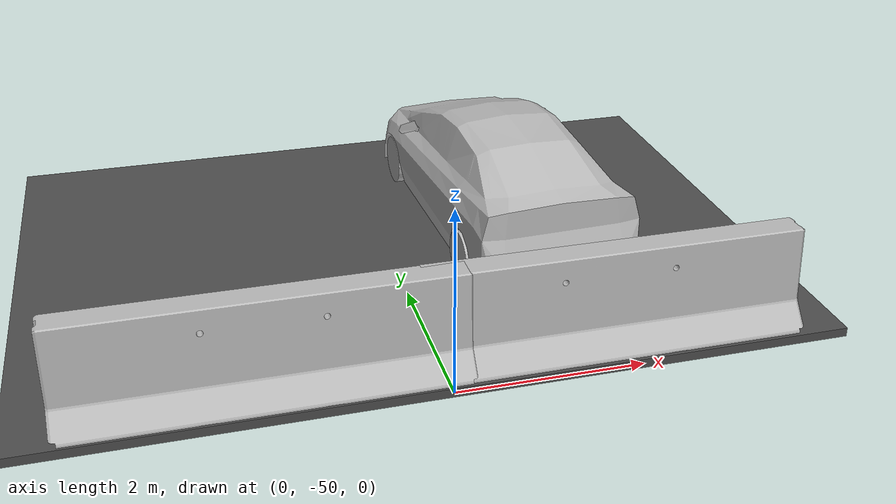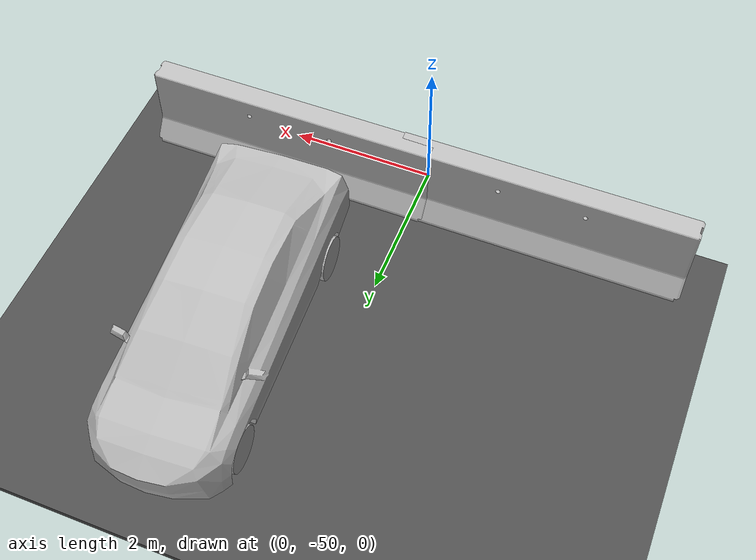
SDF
<sdf version="1.7">
 <world name="default">
  <model name="asphalt_plane">
   <static>1</static>
   <link name="link">
    <collision name="collision"><geometry><box><size>20 100 0.1</size></box></geometry></collision>
    <visual name="visual">
     <cast_shadows>0</cast_shadows>
     <geometry><box><size>20 100 0.1</size></box></geometry>
     <material>
      <script>
       <uri>model://asphalt_plane/materials/scripts</uri>
       <uri>model://asphalt_plane/materials/textures</uri>
       <name>vrc/asphalt</name>
      </script>
     </material>
    </visual>
   </link>
  </model>
  <model name="jersey_barrier_0_clone">
   <static>1</static>
   <link name="link">
    <visual name="visual">
     <geometry><mesh><uri>model://jersey_barrier/meshes/jersey_barrier.dae</uri></mesh></geometry>
    </visual>
    <collision name="upright">
     <pose>0 0 0.5715 0 -0 0</pose>
     <geometry><box><size>4.06542 0.3063 1.143</size></box></geometry>
    </collision>
    <collision name="base">
     <pose>0 0 0.032258 0 -0 0</pose>
     <geometry><box><size>4.06542 0.8107 0.064516</size></box></geometry>
    </collision>
    <collision name="base2">
     <pose>0 0 0.1 0 -0 0</pose>
     <geometry><box><size>4.06542 0.65 0.1</size></box></geometry>
    </collision>
    <collision name="base3">
     <pose>0 0 0.2 0 -0 0</pose>
     <geometry><box><size>4.06542 0.5 0.1</size></box></geometry>
    </collision>
    <collision name="left-angle">
     <pose>0 -0.224 0.2401 0.9 -0 0</pose>
     <geometry><box><size>4.06542 0.5 0.064516</size></box></geometry>
    </collision>
    <collision name="right-angle">
     <pose>0 0.224 0.2401 -0.9 0 0</pose>
     <geometry><box><size>4.06542 0.5 0.064516</size></box></geometry>
    </collision>
   </link>
   <pose>-1.76009 -49.5671 0 0 -0 0</pose>
  </model>
  <model name="jersey_barrier_0_clone_0">
   <static>1</static>
   <link name="link">
    <visual name="visual">
     <geometry><mesh><uri>model://jersey_barrier/meshes/jersey_barrier.dae</uri></mesh></geometry>
    </visual>
    <collision name="upright">
     <pose>0 0 0.5715 0 -0 0</pose>
     <geometry><box><size>4.06542 0.3063 1.143</size></box></geometry>
    </collision>
    <collision name="base">
     <pose>0 0 0.032258 0 -0 0</pose>
     <geometry><box><size>4.06542 0.8107 0.064516</size></box></geometry>
    </collision>
    <collision name="base2">
     <pose>0 0 0.1 0 -0 0</pose>
     <geometry><box><size>4.06542 0.65 0.1</size></box></geometry>
    </collision>
    <collision name="base3">
     <pose>0 0 0.2 0 -0 0</pose>
     <geometry><box><size>4.06542 0.5 0.1</size></box></geometry>
    </collision>
    <collision name="left-angle">
     <pose>0 -0.224 0.2401 0.9 -0 0</pose>
     <geometry><box><size>4.06542 0.5 0.064516</size></box></geometry>
    </collision>
    <collision name="right-angle">
     <pose>0 0.224 0.2401 -0.9 0 0</pose>
     <geometry><box><size>4.06542 0.5 0.064516</size></box></geometry>
    </collision>
   </link>
   <pose>1.80772 -49.5538 0 0 -0 0</pose>
  </model>
  <model name="prius">
   <link name="dummy">
    <inertial>
     <mass>1</mass>
     <inertia><ixx>0.001</ixx><ixy>0</ixy><ixz>0</ixz><iyy>0.001</iyy><iyz>0</iyz><izz>0.001</izz></inertia>
    </inertial>
   </link>
   <joint name="base_link_connection" type="revolute">
    <pose relative_to="dummy">1.45 0 0 0 -0 1.57</pose>
    <parent>dummy</parent>
    <child>chassis</child>
    <axis>
     <limit><lower>0</lower><upper>0</upper></limit>
     <dynamics>
      <damping>0</damping>
      <friction>0</friction>
      <spring_reference>0</spring_reference>
      <spring_stiffness>0</spring_stiffness>
     </dynamics>
     <xyz>0 0 1</xyz>
    </axis>
    <physics><ode><limit><cfm>0</cfm><erp>0.2</erp></limit></ode></physics>
   </joint>
   <link name="chassis">
    <pose relative_to="base_link_connection">0 0 0 0 -0 0</pose>
    <inertial>
     <pose>0 -0.00103 0.481884 0 -0 1.5708</pose>
     <mass>1359</mass>
     <inertia>
      <ixx>2583.64</ixx>
      <ixy>6.53301e-06</ixy>
      <ixz>0.585363</ixz>
      <iyy>595.596</iyy>
      <iyz>-2.15016e-06</iyz>
      <izz>2683.73</izz>
     </inertia>
    </inertial>
    <collision name="chassis_collision">
     <pose>0 0.05 0.625 0 -0 0</pose>
     <geometry><box><size>1.7526 2.1 0.95</size></box></geometry>
    </collision>
    <collision name="chassis_fixed_joint_lump__front_bumper_collision_1">
     <pose>0 -2 0.458488 0 -0 0</pose>
     <geometry><box><size>1.33728 0.48 0.566691</size></box></geometry>
    </collision>
    <collision name="chassis_fixed_joint_lump__hood_collision_2">
     <pose>0 -1.90084 0.676305 0.341247 -0 0</pose>
     <geometry><box><size>1.59797 0.493107 0.265468</size></box></geometry>
    </collision>
    <collision name="chassis_fixed_joint_lump__windshield_collision_3">
     <pose>0 -0.875105 1.03227 0.335476 -0 0</pose>
     <geometry><box><size>1.16838 1.65425 0.272347</size></box></geometry>
    </collision>
    <collision name="chassis_fixed_joint_lump__top_front_collision_4">
     <pose>0 0.161236 1.38604 0.13503 -0 0</pose>
     <geometry><box><size>1.27915 0.625988 0.171868</size></box></geometry>
    </collision>
    <collision name="chassis_fixed_joint_lump__top_rear_collision_5">
     <pose>0 0.817696 1.36007 -0.068997 0 0</pose>
     <geometry><box><size>1.28513 0.771189 0.226557</size></box></geometry>
    </collision>
    <collision name="chassis_fixed_joint_lump__rear_window_collision_6">
     <pose>0 1.64053 1.17513 -0.262017 0 0</pose>
     <geometry><box><size>1.26785 1.11634 0.244286</size></box></geometry>
    </collision>
    <collision name="chassis_fixed_joint_lump__trunk_collision_7">
     <pose>0 1.63706 0.88818 0 -0 0</pose>
     <geometry><box><size>1.78806 1.13899 0.482746</size></box></geometry>
    </collision>
    <collision name="chassis_fixed_joint_lump__back_bumper_collision_8">
     <pose>0 2.05445 0.57787 0 -0 0</pose>
     <geometry><box><size>1.78165 0.512093 0.581427</size></box></geometry>
    </collision>
    <visual name="chassis_visual">
     <geometry>
      <mesh><scale>0.01 0.01 0.01</scale><uri>model://prius_description/meshes/hybrid_body.obj</uri></mesh>
     </geometry>
    </visual>
    <sensor name="center_laser_sensor" type="gpu_ray">
     <visualize>0</visualize>
     <update_rate>20</update_rate>
     <always_on>1</always_on>
     <ray>
      <scan>
       <vertical>
        <samples>128</samples>
        <resolution>1</resolution>
        <min_angle>-0.19635</min_angle>
        <max_angle>0.19635</max_angle>
       </vertical>
       <horizontal>
        <samples>1024</samples>
        <resolution>1</resolution>
        <min_angle>-3.14</min_angle>
        <max_angle>3.14</max_angle>
       </horizontal>
      </scan>
      <range><min>0.8</min><max>200</max><resolution>0.03</resolution></range>
      <noise><type>gaussian</type><mean>0</mean><stddev>0.01</stddev></noise>
     </ray>
     <plugin name="center_laser_sensor" filename="libgazebo_ros_ray_sensor.so">
      <ros><namespace>prius</namespace><argument>~/out:=center_laser/scan</argument></ros>
      <frame_name>center_laser_link</frame_name>
      <output_type>sensor_msgs/PointCloud2</output_type>
     </plugin>
     <pose>0 0.4 1.8 0 0 -1.5707</pose>
    </sensor>
    <sensor name="front_camera_sensor" type="camera">
     <update_rate>30</update_rate>
     <always_on>0</always_on>
     <visualize>0</visualize>
     <camera name="front_camera">
      <horizontal_fov>2.0944</horizontal_fov>
      <image><width>1280</width><height>1024</height><format>R8G8B8</format></image>
      <clip><near>0.02</near><far>300</far></clip>
      <noise><type>gaussian</type><mean>0</mean><stddev>0.007</stddev></noise>
     </camera>
     <plugin name="front_camera_controller" filename="libgazebo_ros_camera.so">
      <ros><namespace>prius</namespace></ros>
      <camera_name>/prius/front_camera</camera_name>
      <frame_name>front_camera_link_optical</frame_name>
      <hack_baseline>0.07</hack_baseline>
     </plugin>
     <pose>0 -0.9 1.1 0 0 -1.5707</pose>
    </sensor>
   </link>
   <joint name="front_left_steer_joint" type="revolute">
    <pose relative_to="chassis">0.767 -1.41 0.3 0 -0 0</pose>
    <parent>chassis</parent>
    <child>fl_axle</child>
    <axis>
     <xyz>0 0 1</xyz>
     <limit><effort>1e+07</effort><velocity>1e+06</velocity><lower>-1e+16</lower><upper>1e+16</upper></limit>
     <dynamics><spring_reference>0</spring_reference><spring_stiffness>0</spring_stiffness></dynamics>
    </axis>
   </joint>
   <link name="fl_axle">
    <pose relative_to="front_left_steer_joint">0 0 0 0 -0 0</pose>
    <inertial>
     <mass>1</mass>
     <inertia><ixx>0.004</ixx><ixy>0</ixy><ixz>0</ixz><iyy>0.004</iyy><iyz>0</iyz><izz>0.004</izz></inertia>
    </inertial>
   </link>
   <joint name="front_left_wheel_joint" type="revolute">
    <pose relative_to="fl_axle">0 0 0 0 -0 0</pose>
    <parent>fl_axle</parent>
    <child>front_left_wheel</child>
    <axis>
     <xyz>1 0 0</xyz>
     <limit><lower>-1e+16</lower><upper>1e+16</upper></limit>
     <dynamics><spring_reference>0</spring_reference><spring_stiffness>0</spring_stiffness></dynamics>
    </axis>
   </joint>
   <link name="front_left_wheel">
    <pose relative_to="front_left_wheel_joint">0 0 0 0 -0 0</pose>
    <inertial>
     <mass>11</mass>
     <inertia>
      <ixx>0.586312</ixx>
      <ixy>0</ixy>
      <ixz>0</ixz>
      <iyy>0.335529</iyy>
      <iyz>0</iyz>
      <izz>0.335529</izz>
     </inertia>
    </inertial>
    <collision name="front_left_wheel_collision_collision">
     <geometry><sphere><radius>0.31265</radius></sphere></geometry>
     <surface>
      <contact><ode><kp>1e+08</kp><min_depth>0.005</min_depth></ode></contact>
      <friction><ode><mu>0.9</mu><mu2>0.9</mu2></ode></friction>
     </surface>
    </collision>
    <visual name="front_left_wheel_visual">
     <geometry>
      <mesh><scale>0.01 0.01 0.01</scale><uri>model://prius_description/meshes/wheel.obj</uri></mesh>
     </geometry>
    </visual>
   </link>
   <joint name="front_right_steer_joint" type="revolute">
    <pose relative_to="chassis">-0.767 -1.41 0.3 0 -0 0</pose>
    <parent>chassis</parent>
    <child>fr_axle</child>
    <axis>
     <xyz>0 0 1</xyz>
     <limit><effort>1e+07</effort><velocity>1e+06</velocity><lower>-1e+16</lower><upper>1e+16</upper></limit>
     <dynamics><spring_reference>0</spring_reference><spring_stiffness>0</spring_stiffness></dynamics>
    </axis>
   </joint>
   <link name="fr_axle">
    <pose relative_to="front_right_steer_joint">0 0 0 0 -0 0</pose>
    <inertial>
     <mass>1</mass>
     <inertia><ixx>0.004</ixx><ixy>0</ixy><ixz>0</ixz><iyy>0.004</iyy><iyz>0</iyz><izz>0.004</izz></inertia>
    </inertial>
   </link>
   <joint name="front_right_wheel_joint" type="revolute">
    <pose relative_to="fr_axle">0 0 0 0 -0 0</pose>
    <parent>fr_axle</parent>
    <child>front_right_wheel</child>
    <axis>
     <xyz>1 0 0</xyz>
     <limit><lower>-1e+16</lower><upper>1e+16</upper></limit>
     <dynamics><spring_reference>0</spring_reference><spring_stiffness>0</spring_stiffness></dynamics>
    </axis>
   </joint>
   <link name="front_right_wheel">
    <pose relative_to="front_right_wheel_joint">0 0 0 0 -0 0</pose>
    <inertial>
     <mass>11</mass>
     <inertia>
      <ixx>0.586312</ixx>
      <ixy>0</ixy>
      <ixz>0</ixz>
      <iyy>0.335529</iyy>
      <iyz>0</iyz>
      <izz>0.335529</izz>
     </inertia>
    </inertial>
    <collision name="front_right_wheel_collision_collision">
     <geometry><sphere><radius>0.31265</radius></sphere></geometry>
     <surface>
      <contact><ode><kp>1e+08</kp><min_depth>0.005</min_depth></ode></contact>
      <friction><ode><mu>0.9</mu><mu2>0.9</mu2></ode></friction>
     </surface>
    </collision>
    <visual name="front_right_wheel_visual">
     <geometry>
      <mesh><scale>0.01 0.01 0.01</scale><uri>model://prius_description/meshes/wheel.obj</uri></mesh>
     </geometry>
    </visual>
   </link>
   <joint name="rear_left_wheel_joint" type="revolute">
    <pose relative_to="chassis">0.793 1.45 0.3 0 -0 0</pose>
    <parent>chassis</parent>
    <child>rear_left_wheel</child>
    <axis>
     <xyz>1 0 0</xyz>
     <limit><lower>-1e+16</lower><upper>1e+16</upper></limit>
     <dynamics><spring_reference>0</spring_reference><spring_stiffness>0</spring_stiffness></dynamics>
    </axis>
   </joint>
   <link name="rear_left_wheel">
    <pose relative_to="rear_left_wheel_joint">0 0 0 0 -0 0</pose>
    <inertial>
     <mass>11</mass>
     <inertia>
      <ixx>0.586312</ixx>
      <ixy>0</ixy>
      <ixz>0</ixz>
      <iyy>0.335529</iyy>
      <iyz>0</iyz>
      <izz>0.335529</izz>
     </inertia>
    </inertial>
    <collision name="rear_left_wheel_collision_collision">
     <geometry><sphere><radius>0.31265</radius></sphere></geometry>
     <surface>
      <contact><ode><kp>1e+08</kp><min_depth>0.005</min_depth></ode></contact>
      <friction><ode><mu>0.9</mu><mu2>0.9</mu2></ode></friction>
     </surface>
    </collision>
    <visual name="rear_left_wheel_visual">
     <geometry>
      <mesh><scale>0.01 0.01 0.01</scale><uri>model://prius_description/meshes/wheel.obj</uri></mesh>
     </geometry>
    </visual>
   </link>
   <joint name="rear_right_wheel_joint" type="revolute">
    <pose relative_to="chassis">-0.793 1.45 0.3 0 -0 0</pose>
    <parent>chassis</parent>
    <child>rear_right_wheel</child>
    <axis>
     <xyz>1 0 0</xyz>
     <limit><lower>-1e+16</lower><upper>1e+16</upper></limit>
     <dynamics><spring_reference>0</spring_reference><spring_stiffness>0</spring_stiffness></dynamics>
    </axis>
   </joint>
   <link name="rear_right_wheel">
    <pose relative_to="rear_right_wheel_joint">0 0 0 0 -0 0</pose>
    <inertial>
     <mass>11</mass>
     <inertia>
      <ixx>0.586312</ixx>
      <ixy>0</ixy>
      <ixz>0</ixz>
      <iyy>0.335529</iyy>
      <iyz>0</iyz>
      <izz>0.335529</izz>
     </inertia>
    </inertial>
    <collision name="rear_right_wheel_collision_collision">
     <geometry><sphere><radius>0.31265</radius></sphere></geometry>
     <surface>
      <contact><ode><kp>1e+08</kp><min_depth>0.005</min_depth></ode></contact>
      <friction><ode><mu>0.9</mu><mu2>0.9</mu2></ode></friction>
     </surface>
    </collision>
    <visual name="rear_right_wheel_visual">
     <geometry>
      <mesh><scale>0.01 0.01 0.01</scale><uri>model://prius_description/meshes/wheel.obj</uri></mesh>
     </geometry>
    </visual>
   </link>
   <joint name="steering_joint" type="revolute">
    <pose relative_to="chassis">0.357734 -0.627868 0.988243 -1.3021 0 0</pose>
    <parent>chassis</parent>
    <child>steering_wheel</child>
    <axis>
     <xyz>0 0 1</xyz>
     <limit><effort>1e+07</effort><velocity>1e+06</velocity><lower>-1e+16</lower><upper>1e+16</upper></limit>
     <dynamics><spring_reference>0</spring_reference><spring_stiffness>0</spring_stiffness></dynamics>
    </axis>
   </joint>
   <link name="steering_wheel">
    <pose relative_to="steering_joint">0 0 0 0 -0 0</pose>
    <inertial>
     <mass>1</mass>
     <inertia><ixx>0.145833</ixx><ixy>0</ixy><ixz>0</ixz><iyy>0.145833</iyy><iyz>0</iyz><izz>0.125</izz></inertia>
    </inertial>
    <visual name="steering_wheel_visual">
     <pose>0 0 0 1.3021 -0 0</pose>
     <geometry>
      <mesh><scale>0.01 0.01 0.01</scale><uri>model://prius_description/meshes/steering_wheel.obj</uri></mesh>
     </geometry>
    </visual>
   </link>
   <plugin name="joint_states" filename="libgazebo_ros_joint_state_publisher.so">
    <ros><namespace>prius</namespace><remapping>~/out:=joint_states</remapping></ros>
    <update_rate>30</update_rate>
    <joint_name>steering_joint</joint_name>
    <joint_name>front_left_steer_joint</joint_name>
    <joint_name>front_right_steer_joint</joint_name>
    <joint_name>front_left_wheel_joint</joint_name>
    <joint_name>front_right_wheel_joint</joint_name>
    <joint_name>rear_left_wheel_joint</joint_name>
    <joint_name>rear_right_wheel_joint</joint_name>
   </plugin>
   <plugin name="pruis_hybrid_drive" filename="libPriusHybridPlugin.so">
    <ros><namespace>prius</namespace><remapping>prius:=control</remapping></ros>
    <chassis>chassis</chassis>
    <front_left_wheel>front_left_wheel_joint</front_left_wheel>
    <front_right_wheel>front_right_wheel_joint</front_right_wheel>
    <front_left_wheel_steering>front_left_steer_joint</front_left_wheel_steering>
    <front_right_wheel_steering>front_right_steer_joint</front_right_wheel_steering>
    <back_left_wheel>rear_left_wheel_joint</back_left_wheel>
    <back_right_wheel>rear_right_wheel_joint</back_right_wheel>
    <steering_wheel>steering_joint</steering_wheel>
    <chassis_aero_force_gain>0.63045</chassis_aero_force_gain>
    <front_torque>859.4004393000001</front_torque>
    <back_torque>0</back_torque>
    <front_brake_torque>1031.28052716</front_brake_torque>
    <back_brake_torque>687.5203514400001</back_brake_torque>
    <battery_charge_watt_hours>291</battery_charge_watt_hours>
    <battery_discharge_watt_hours>214</battery_discharge_watt_hours>
    <gas_efficiency>0.371</gas_efficiency>
    <min_gas_flow>8.981854013171626e-05</min_gas_flow>
    <max_speed>37.998337013956565</max_speed>
    <max_steer>0.6458</max_steer>
    <flwheel_steering_p_gain>1e4</flwheel_steering_p_gain>
    <frwheel_steering_p_gain>1e4</frwheel_steering_p_gain>
    <flwheel_steering_i_gain>0</flwheel_steering_i_gain>
    <frwheel_steering_i_gain>0</frwheel_steering_i_gain>
    <flwheel_steering_d_gain>3e2</flwheel_steering_d_gain>
    <frwheel_steering_d_gain>3e2</frwheel_steering_d_gain>
   </plugin>
   <plugin name="p3d" filename="libgazebo_ros_p3d.so">
    <ros><namespace>prius</namespace><argument>odom:=ground_truth</argument></ros>
    <body_name>chassis</body_name>
    <topic_name>base_pose_ground_truth</topic_name>
    <frame_name>world</frame_name>
    <gaussian_noise>0.01</gaussian_noise>
   </plugin>
   <frame name="dummy_joint" attached_to="dummy"/>
   <frame name="base_link" attached_to="dummy_joint"/>
   <frame name="center_laser_joint" attached_to="chassis"><pose>0 0.4 1.8 0 0 -1.5707</pose></frame>
   <frame name="center_laser_link" attached_to="center_laser_joint"/>
   <frame name="front_camera_optical_joint" attached_to="front_camera_link">
    <pose>0 0 0 -1.5707 0 -1.5707</pose>
   </frame>
   <frame name="front_camera_link_optical" attached_to="front_camera_optical_joint"/>
   <frame name="front_camera_joint" attached_to="chassis"><pose>0 -0.9 1.1 0 0 -1.5707</pose></frame>
   <frame name="front_camera_link" attached_to="front_camera_joint"/>
   <pose>1.52626 -47.9229 0.056906 0 0.000235 1.61787</pose>
   <update_rate>30.0</update_rate>
  </model>
 </world>
</sdf>
